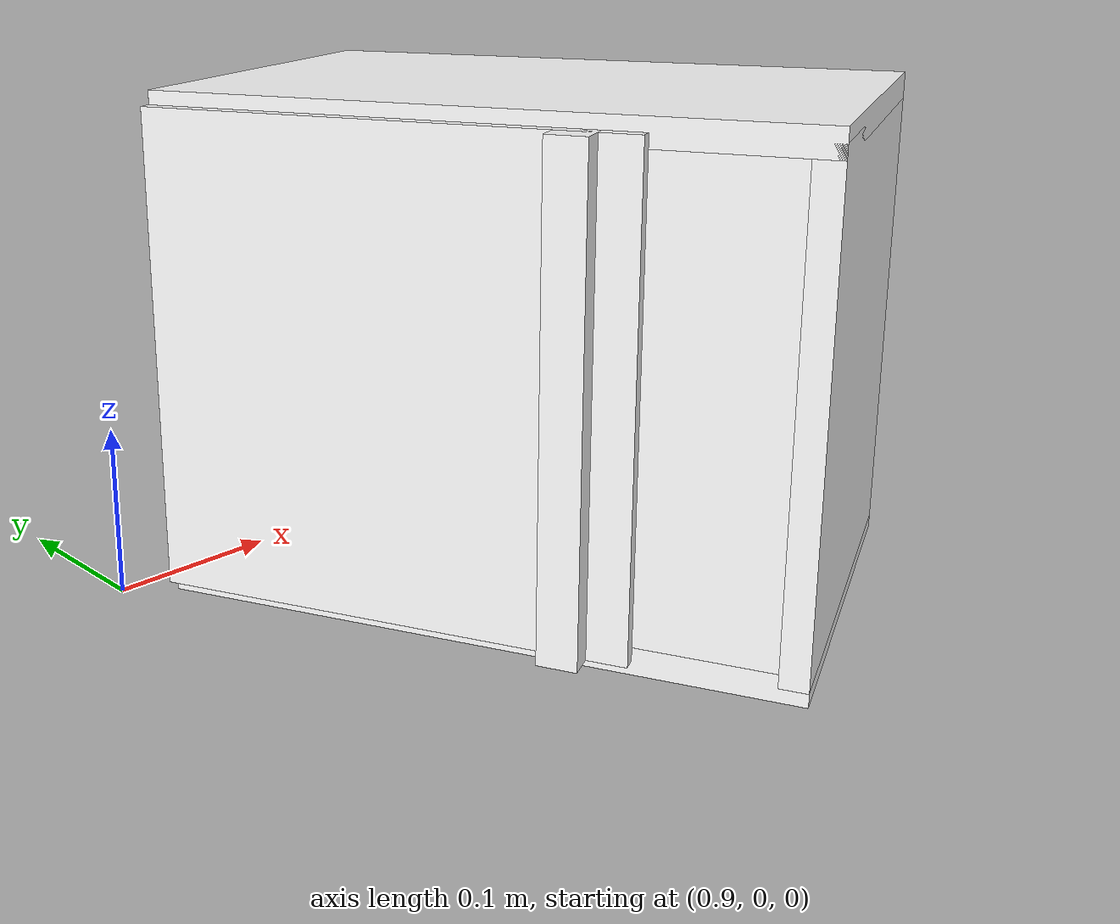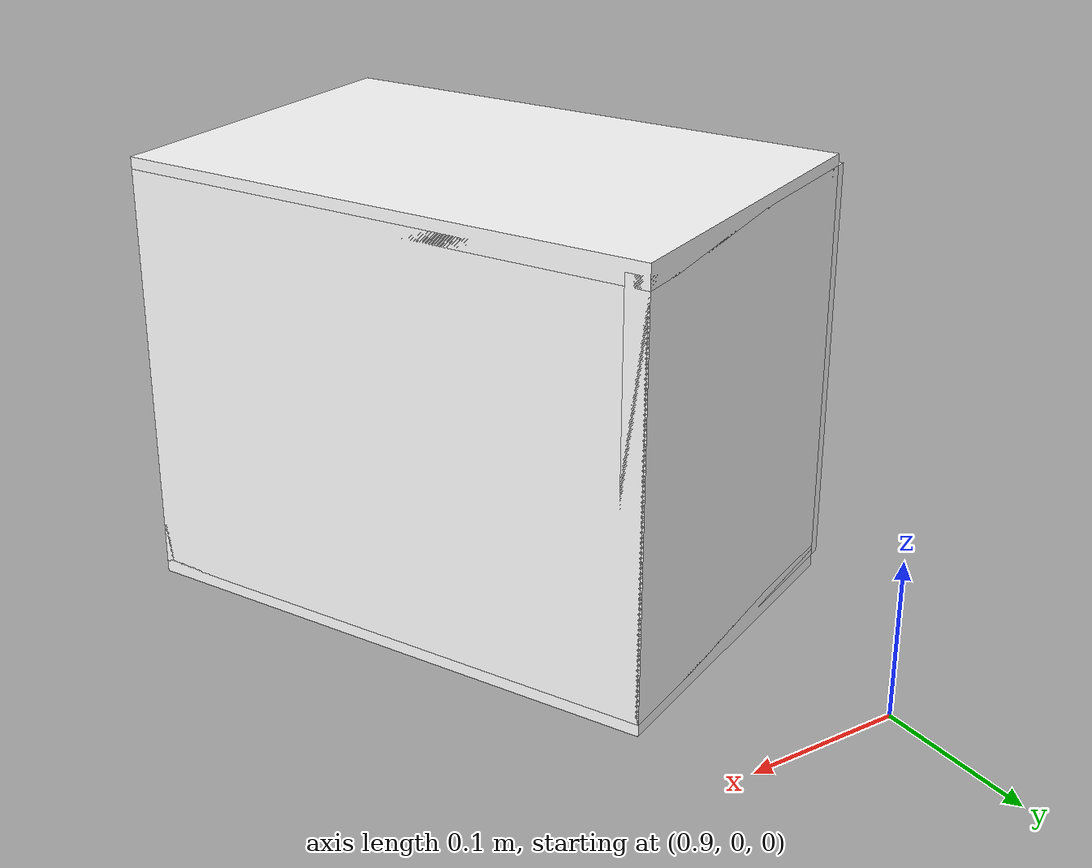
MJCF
<mujoco model="cabinet">
    <compiler angle="radian" eulerseq='zxy' />
    <option gravity = "0 0 0" />
    <option>
        <flag contact = "disable"/>
    </option>
    <statistic	extent="1.0" center="0.0 0.0 0.0"/>
    <visual>
        <map fogstart="3" fogend="5" force="0.1" znear=" 0.100000 " zfar=" 12.000000 "/>
    </visual>
    <size njmax="500" nconmax="100" />
    <actuator>
        <velocity joint="bottom_left_hinge" name="viva_revolution" kv='10'></velocity>
    </actuator>
    <asset>
        <texture builtin="flat" name="tabletex" height="32" width="32" rgb1="1 1 1" type="cube"></texture>
        <texture builtin="flat" name="objtex" height="32" width="32" rgb1="1 1 1" type="cube"></texture>
        <texture builtin="flat" name="handletex" height="32" width="32" rgb1="1 1 1" type="cube"></texture>
        <texture builtin="flat" name="wallpaper" height="32" width="32" rgb1="1 0 0" type="cube"></texture>
        <texture builtin="flat" name="kp" height="32" width="32" rgb1="1 1 1" type="cube"></texture>
        <material name="geomTable" shininess="0.03" specular="0.75" texture="tabletex"></material>
        <material name="geomObj" shininess="0.03" specular="0.75" texture="objtex"></material>
        <material name="geomHandle" shininess="0.03" specular="0.75" texture="handletex"></material>
        <material name="ax" shininess="0.03" specular="0.75" texture="wallpaper"></material>
        <material name="bg" shininess="0.03" specular="0.75" texture="wallpaper"></material>
        <material name="geomKeypad" shininess="0.03" specular="0.75" texture="kp"></material>
    </asset>
    <worldbody>
        <body name="cabinet_bottom" pos= " 1.041476 -0.203419 0.051404 "  quat= " -0.212149 0.000000 0.000000 0.977237" >
            <inertial pos="0 0 0" mass="1" diaginertia="1 1 1" />
            <geom size= " 0.107144 0.163075 0.006973 "  type="box" material="geomObj" name="b"/>
            <body name="cabinet_left" pos= " 0.000000 -0.156102 0.122613 " >
                <inertial pos="0 0 0" mass="1" diaginertia="1 1 1" />
                <geom size= " 0.107144 0.006973 0.122613 "  type="box" material="geomObj" name="c" />
            </body>
            <body name="cabinet_right" pos= " 0.000000 0.156102 0.122613 " >
                <inertial pos="0 0 0" mass="1" diaginertia="1 1 1" />
                <geom size= " 0.107144 0.006973 0.122613 "  type="box" material="geomObj" name="d" />
            </body>
            <body name="cabinet_top" pos= " 0.000000 0.000000 0.245225 " >
                <inertial pos="0 0 0" mass="1" diaginertia="1 1 1" />
                <geom size= " 0.107144 0.163075 0.006973 "  type="box" material="geomObj" name="e"/>
            </body>
            <body name="cabinet_back" pos= " -0.100171 0.000000 0.122613 "  >
                <inertial pos="0 0 0" mass="1" diaginertia="1 1 1" />
                <geom size= " 0.006973 0.163075 0.122613 "  type="box" material="geomObj" name="f" />
            </body>
            <body name="cabinet_keypad" pos= " 0.006973 0.121306 0.122613 " >
                <inertial pos="0 0 0" mass="1" diaginertia="1 1 1" />
                <geom size= " 0.100171 0.040769 0.115640 "  type="box" material="geomKeypad" name="keypizzlemynizzle" />
            </body>
            <body name="cabinet_left_hinge" pos= " 0.107144 -0.163075 0.122613 " >
                <inertial pos= " 0.000000 0.122306 0.000000 "  mass="1" diaginertia="1 1 1" />
                <joint name="bottom_left_hinge" type="hinge" pos="0 0 0" axis="0 0 1" limited="true" range= "-2.3 0"  />
                <geom size= " 0.006973 0.122306 0.122613 "  pos= " 0.000000 0.122306 0.000000 "  type="box" material="geomObj" name="g"/>
                <body name="handle_link" pos= " 0.010000 0.214613 0.000000 " >
                    <inertial pos="0 0 0" mass="1" diaginertia="1 1 1" />
                    <geom size= " 0.010000 0.010000 0.122613 "  type="box" material="geomHandle" name="h"/>
                </body>
            </body>
        </body>
        <body name="external_camera_body_0" pos="0.0 0 0.00" >
            <camera euler="-1.57 1.57 0.0" fovy=" 54.280851 " name="external_camera_0" pos="0.0 0 0"></camera>
            <inertial pos= " 0.00 0.0 0.000000 " mass="1" diaginertia="1 1 1" />
            <joint name="cam_j" pos="0.0 0 0" axis = "1 0 0" type="free" />
        </body>
    </worldbody>
</mujoco>
